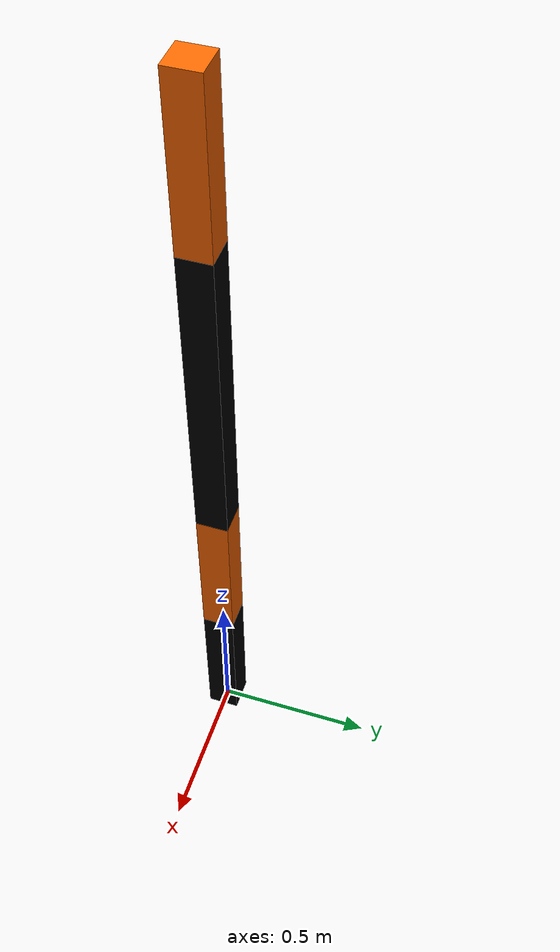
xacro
<?xml version="1.0" ?>
<!-- |    This document was autogenerated by xacro from manipulator.urdf               | -->
<!-- |    EDITING THIS FILE BY HAND IS NOT RECOMMENDED                                 | -->
<robot name="testbot" xmlns:xacro="http://www.ros.org/wiki/xacro">

  <material name="black">
    <color rgba="0.0 0.0 0.0 1.0"/>
  </material>

  <material name="orange">
    <color rgba="1.0 0.4 0.0 1.0"/>
  </material>

  <link name="base"/>

  <joint name="fixed" type="fixed">
    <parent link="base"/>
    <child link="link1"/>
  </joint>

  <link name="link1">
    <collision>
      <origin rpy="0 0 0" xyz="0 0 0.25"/>
      <geometry>
        <box size="0.1 0.1 0.5"/>
      </geometry>
    </collision>

    <visual>
      <origin rpy="0 0 0" xyz="0 0 0.25"/>
      <geometry>
        <box size="0.1 0.1 0.5"/>
      </geometry>
      <material name="black"/>
    </visual>

    <inertial>
      <origin rpy="0 0 0" xyz="0 0 0.25"/>
      <mass value="1"/>
      <inertia ixx="1.0" ixy="0.0" ixz="0.0" iyy="1.0" iyz="0.0" izz="1.0"/>
    </inertial>
  </link>

  <joint name="joint1" type="revolute">
    <parent link="link1"/>
    <child link="link2"/>
    <origin rpy="0 0 0" xyz="0 0 0.5"/>
    <axis xyz="0 0 1"/>
    <limit effort="30" lower="-2.617" upper="2.617" velocity="1.571"/>
  </joint>

  <link name="link2">
    <collision>
      <origin rpy="0 0 0" xyz="0 0 0.25"/>
      <geometry>
        <box size="0.1 0.1 0.5"/>
      </geometry>
    </collision>

    <visual>
      <origin rpy="0 0 0" xyz="0 0 0.25"/>
      <geometry>
        <box size="0.1 0.1 0.5"/>
      </geometry>
      <material name="orange"/>
    </visual>

    <inertial>
      <origin rpy="0 0 0" xyz="0 0 0.25"/>
      <mass value="1"/>
      <inertia ixx="1.0" ixy="0.0" ixz="0.0" iyy="1.0" iyz="0.0" izz="1.0"/>
    </inertial>
  </link>

  <joint name="joint2" type="revolute">
    <parent link="link2"/>
    <child link="link3"/>
    <origin rpy="0 0 0" xyz="0 0 0.5"/>
    <axis xyz="0 1 0"/>
    <limit effort="30" lower="-2.617" upper="2.617" velocity="1.571"/>
  </joint>

  <link name="link3">
    <collision>
      <origin rpy="0 0 0" xyz="0 0 0.5"/>
      <geometry>
        <box size="0.1 0.1 1"/>
      </geometry>
    </collision>

    <visual>
      <origin rpy="0 0 0" xyz="0 0 0.5"/>
      <geometry>
        <box size="0.1 0.1 1"/>
      </geometry>
      <material name="black"/>
    </visual>

    <inertial>
      <origin rpy="0 0 0" xyz="0 0 0.5"/>
      <mass value="1"/>
      <inertia ixx="1.0" ixy="0.0" ixz="0.0" iyy="1.0" iyz="0.0" izz="1.0"/>
    </inertial>
  </link>

  <joint name="joint3" type="revolute">
    <parent link="link3"/>
    <child link="link4"/>
    <origin rpy="0 0 0" xyz="0 0 1.0"/>
    <axis xyz="0 1 0"/>
    <limit effort="30" lower="-2.617" upper="2.617" velocity="1.571"/>
  </joint>

  <link name="link4">
    <collision>
      <origin rpy="0 0 0" xyz="0 0 0.25"/>
      <geometry>
        <box size="0.1 0.1 0.5"/>
      </geometry>
    </collision>

    <visual>
      <origin rpy="0 0 0" xyz="0 0 0.25"/>
      <geometry>
        <box size="0.1 0.1 0.5"/>
      </geometry>
      <material name="orange"/>
    </visual>

    <inertial>
      <origin rpy="0 0 0" xyz="0 0 0.25"/>
      <mass value="1"/>
      <inertia ixx="1.0" ixy="0.0" ixz="0.0" iyy="1.0" iyz="0.0" izz="1.0"/>
    </inertial>
  </link>
</robot>
